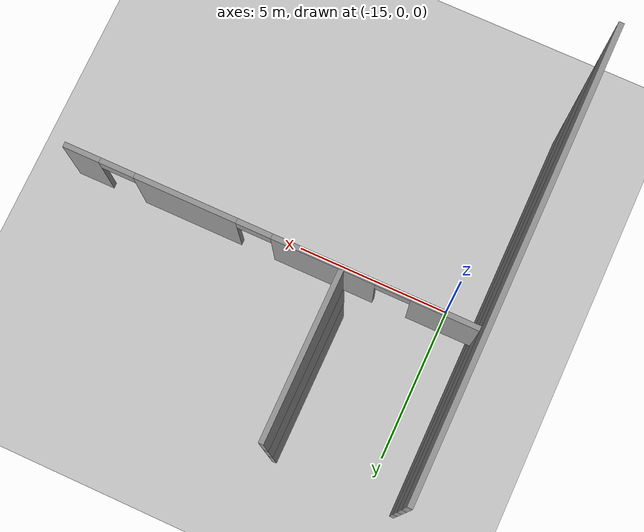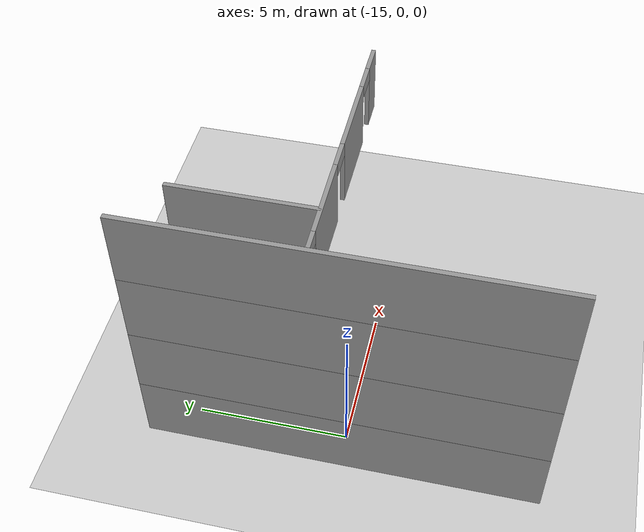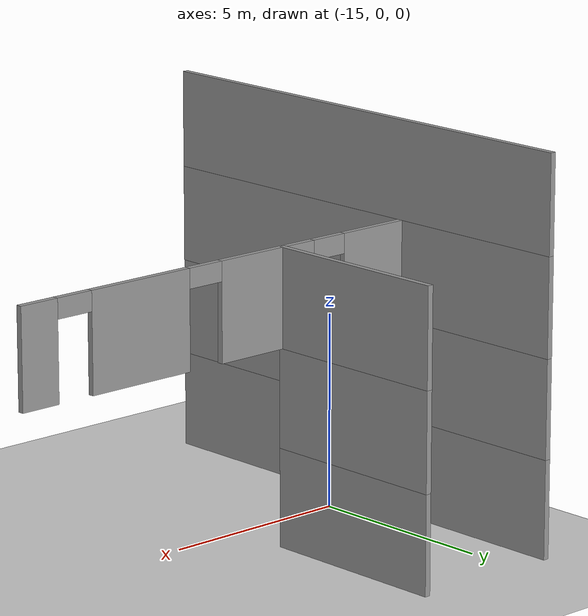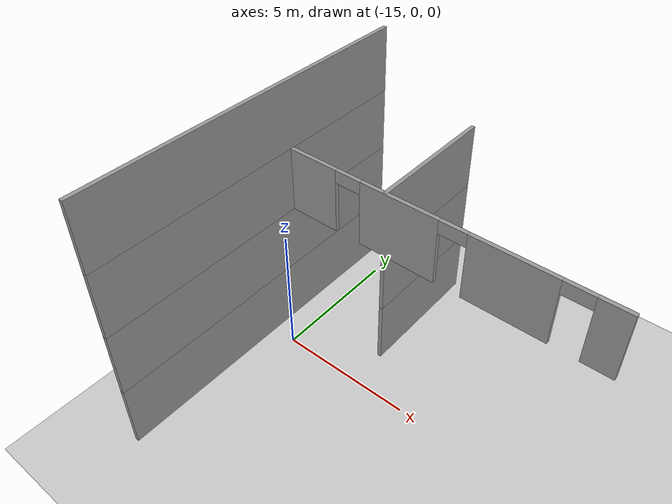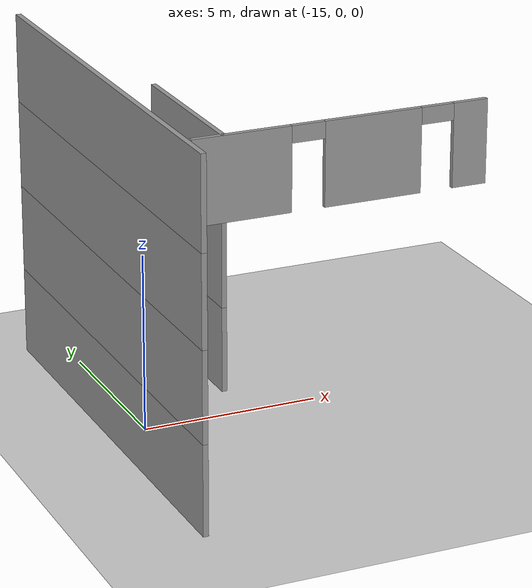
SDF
<sdf version="1.6">
 <world name="default">
  <model name="ground_plane">
   <static>1</static>
   <link name="link">
    <collision name="collision">
     <geometry><plane><normal>0 0 1</normal><size>100 100</size></plane></geometry>
     <surface>
      <contact><collide_bitmask>65535</collide_bitmask></contact>
      <friction><ode><mu>100</mu><mu2>50</mu2></ode></friction>
     </surface>
    </collision>
    <visual name="visual">
     <cast_shadows>0</cast_shadows>
     <geometry><plane><normal>0 0 1</normal><size>100 100</size></plane></geometry>
     <material>
      <script><uri>file://media/materials/scripts/gazebo.material</uri><name>Gazebo/Grey</name></script>
     </material>
    </visual>
   </link>
  </model>
  <model name="floor2plan_v2">
   <link name="Wall_102">
    <pose>-9.9294 1.47672 5 0 -0 0</pose>
    <visual name="Wall_102_Visual_0">
     <pose>-4.985 0 1.25 0 -0 0</pose>
     <geometry><box><size>1.987 0.15 2.5</size></box></geometry>
     <material>
      <script><uri>file://media/materials/scripts/gazebo.material</uri><name>Gazebo/Grey</name></script>
      <ambient>1 1 1 1</ambient>
      <shader type="pixel"/>
      <diffuse>0.7 0.7 0.7 1</diffuse>
      <specular>0.01 0.01 0.01 1</specular>
      <emissive>0 0 0 1</emissive>
     </material>
     <meta><layer>2</layer></meta>
    </visual>
    <visual name="Wall_102_Visual_1">
     <pose>-1.5135 0 1.25 0 -0 0</pose>
     <geometry><box><size>2.956 0.15 2.5</size></box></geometry>
     <material>
      <script><uri>file://media/materials/scripts/gazebo.material</uri><name>Gazebo/Grey</name></script>
      <ambient>1 1 1 1</ambient>
      <shader type="pixel"/>
      <diffuse>0.7 0.7 0.7 1</diffuse>
      <specular>0.01 0.01 0.01 1</specular>
      <emissive>0 0 0 1</emissive>
     </material>
     <meta><layer>2</layer></meta>
    </visual>
    <visual name="Wall_102_Visual_2">
     <pose>2.4425 0 1.25 0 -0 0</pose>
     <geometry><box><size>2.956 0.15 2.5</size></box></geometry>
     <material>
      <script><uri>file://media/materials/scripts/gazebo.material</uri><name>Gazebo/Grey</name></script>
      <ambient>1 1 1 1</ambient>
      <shader type="pixel"/>
      <diffuse>0.7 0.7 0.7 1</diffuse>
      <specular>0.01 0.01 0.01 1</specular>
      <emissive>0 0 0 1</emissive>
     </material>
     <meta><layer>2</layer></meta>
    </visual>
    <visual name="Wall_102_Visual_3">
     <pose>5.4495 0 1.25 0 -0 0</pose>
     <geometry><box><size>1.058 0.15 2.5</size></box></geometry>
     <material>
      <script><uri>file://media/materials/scripts/gazebo.material</uri><name>Gazebo/Grey</name></script>
      <ambient>1 1 1 1</ambient>
      <shader type="pixel"/>
      <diffuse>0.7 0.7 0.7 1</diffuse>
      <specular>0.01 0.01 0.01 1</specular>
      <emissive>0 0 0 1</emissive>
     </material>
     <meta><layer>2</layer></meta>
    </visual>
    <visual name="Wall_102_Visual_4">
     <pose>-3.4915 0 2.25 0 -0 0</pose>
     <geometry><box><size>1 0.15 0.5</size></box></geometry>
     <material>
      <script><uri>file://media/materials/scripts/gazebo.material</uri><name>Gazebo/Grey</name></script>
      <ambient>1 1 1 1</ambient>
      <shader type="pixel"/>
      <diffuse>0.7 0.7 0.7 1</diffuse>
      <specular>0.01 0.01 0.01 1</specular>
      <emissive>0 0 0 1</emissive>
     </material>
     <meta><layer>2</layer></meta>
    </visual>
    <visual name="Wall_102_Visual_5">
     <pose>0.4645 0 2.25 0 -0 0</pose>
     <geometry><box><size>1 0.15 0.5</size></box></geometry>
     <material>
      <script><uri>file://media/materials/scripts/gazebo.material</uri><name>Gazebo/Grey</name></script>
      <ambient>1 1 1 1</ambient>
      <shader type="pixel"/>
      <diffuse>0.7 0.7 0.7 1</diffuse>
      <specular>0.01 0.01 0.01 1</specular>
      <emissive>0 0 0 1</emissive>
     </material>
     <meta><layer>2</layer></meta>
    </visual>
    <visual name="Wall_102_Visual_6">
     <pose>4.4205 0 2.25 0 -0 0</pose>
     <geometry><box><size>1 0.15 0.5</size></box></geometry>
     <material>
      <script><uri>file://media/materials/scripts/gazebo.material</uri><name>Gazebo/Grey</name></script>
      <ambient>1 1 1 1</ambient>
      <shader type="pixel"/>
      <diffuse>0.7 0.7 0.7 1</diffuse>
      <specular>0.01 0.01 0.01 1</specular>
      <emissive>0 0 0 1</emissive>
     </material>
     <meta><layer>2</layer></meta>
    </visual>
    <collision name="Wall_102_Collision_0">
     <pose>-4.985 0 1.25 0 -0 0</pose>
     <geometry><box><size>1.987 0.15 2.5</size></box></geometry>
     <surface>
      <friction>
       <ode><mu>1</mu><mu2>1</mu2><fdir1>0 0 0</fdir1><slip1>0</slip1><slip2>0</slip2></ode>
       <torsional>
        <coefficient>1</coefficient>
        <patch_radius>0</patch_radius>
        <surface_radius>0</surface_radius>
        <use_patch_radius>1</use_patch_radius>
        <ode><slip>0</slip></ode>
       </torsional>
      </friction>
      <bounce><restitution_coefficient>0</restitution_coefficient><threshold>1e+06</threshold></bounce>
      <contact>
       <collide_without_contact>0</collide_without_contact>
       <collide_without_contact_bitmask>1</collide_without_contact_bitmask>
       <collide_bitmask>1</collide_bitmask>
       <ode>
        <soft_cfm>0</soft_cfm>
        <soft_erp>0.2</soft_erp>
        <kp>1e+13</kp>
        <kd>1</kd>
        <max_vel>0.01</max_vel>
        <min_depth>0</min_depth>
       </ode>
       <bullet>
        <split_impulse>1</split_impulse>
        <split_impulse_penetration_threshold>-0.01</split_impulse_penetration_threshold>
        <soft_cfm>0</soft_cfm>
        <soft_erp>0.2</soft_erp>
        <kp>1e+13</kp>
        <kd>1</kd>
       </bullet>
      </contact>
     </surface>
    </collision>
    <collision name="Wall_102_Collision_2">
     <pose>2.4425 0 1.25 0 -0 0</pose>
     <geometry><box><size>2.956 0.15 2.5</size></box></geometry>
     <surface>
      <friction>
       <ode><mu>1</mu><mu2>1</mu2><fdir1>0 0 0</fdir1><slip1>0</slip1><slip2>0</slip2></ode>
       <torsional>
        <coefficient>1</coefficient>
        <patch_radius>0</patch_radius>
        <surface_radius>0</surface_radius>
        <use_patch_radius>1</use_patch_radius>
        <ode><slip>0</slip></ode>
       </torsional>
      </friction>
      <bounce><restitution_coefficient>0</restitution_coefficient><threshold>1e+06</threshold></bounce>
      <contact>
       <collide_without_contact>0</collide_without_contact>
       <collide_without_contact_bitmask>1</collide_without_contact_bitmask>
       <collide_bitmask>1</collide_bitmask>
       <ode>
        <soft_cfm>0</soft_cfm>
        <soft_erp>0.2</soft_erp>
        <kp>1e+13</kp>
        <kd>1</kd>
        <max_vel>0.01</max_vel>
        <min_depth>0</min_depth>
       </ode>
       <bullet>
        <split_impulse>1</split_impulse>
        <split_impulse_penetration_threshold>-0.01</split_impulse_penetration_threshold>
        <soft_cfm>0</soft_cfm>
        <soft_erp>0.2</soft_erp>
        <kp>1e+13</kp>
        <kd>1</kd>
       </bullet>
      </contact>
     </surface>
    </collision>
    <collision name="Wall_102_Collision_1">
     <pose>-1.5135 0 1.25 0 -0 0</pose>
     <geometry><box><size>2.956 0.15 2.5</size></box></geometry>
     <surface>
      <friction>
       <ode><mu>1</mu><mu2>1</mu2><fdir1>0 0 0</fdir1><slip1>0</slip1><slip2>0</slip2></ode>
       <torsional>
        <coefficient>1</coefficient>
        <patch_radius>0</patch_radius>
        <surface_radius>0</surface_radius>
        <use_patch_radius>1</use_patch_radius>
        <ode><slip>0</slip></ode>
       </torsional>
      </friction>
      <bounce><restitution_coefficient>0</restitution_coefficient><threshold>1e+06</threshold></bounce>
      <contact>
       <collide_without_contact>0</collide_without_contact>
       <collide_without_contact_bitmask>1</collide_without_contact_bitmask>
       <collide_bitmask>1</collide_bitmask>
       <ode>
        <soft_cfm>0</soft_cfm>
        <soft_erp>0.2</soft_erp>
        <kp>1e+13</kp>
        <kd>1</kd>
        <max_vel>0.01</max_vel>
        <min_depth>0</min_depth>
       </ode>
       <bullet>
        <split_impulse>1</split_impulse>
        <split_impulse_penetration_threshold>-0.01</split_impulse_penetration_threshold>
        <soft_cfm>0</soft_cfm>
        <soft_erp>0.2</soft_erp>
        <kp>1e+13</kp>
        <kd>1</kd>
       </bullet>
      </contact>
     </surface>
    </collision>
    <collision name="Wall_102_Collision_3">
     <pose>5.4495 0 1.25 0 -0 0</pose>
     <geometry><box><size>1.058 0.15 2.5</size></box></geometry>
     <surface>
      <friction>
       <ode><mu>1</mu><mu2>1</mu2><fdir1>0 0 0</fdir1><slip1>0</slip1><slip2>0</slip2></ode>
       <torsional>
        <coefficient>1</coefficient>
        <patch_radius>0</patch_radius>
        <surface_radius>0</surface_radius>
        <use_patch_radius>1</use_patch_radius>
        <ode><slip>0</slip></ode>
       </torsional>
      </friction>
      <bounce><restitution_coefficient>0</restitution_coefficient><threshold>1e+06</threshold></bounce>
      <contact>
       <collide_without_contact>0</collide_without_contact>
       <collide_without_contact_bitmask>1</collide_without_contact_bitmask>
       <collide_bitmask>1</collide_bitmask>
       <ode>
        <soft_cfm>0</soft_cfm>
        <soft_erp>0.2</soft_erp>
        <kp>1e+13</kp>
        <kd>1</kd>
        <max_vel>0.01</max_vel>
        <min_depth>0</min_depth>
       </ode>
       <bullet>
        <split_impulse>1</split_impulse>
        <split_impulse_penetration_threshold>-0.01</split_impulse_penetration_threshold>
        <soft_cfm>0</soft_cfm>
        <soft_erp>0.2</soft_erp>
        <kp>1e+13</kp>
        <kd>1</kd>
       </bullet>
      </contact>
     </surface>
    </collision>
    <collision name="Wall_102_Collision_4">
     <pose>-3.4915 0 2.25 0 -0 0</pose>
     <geometry><box><size>1 0.15 0.5</size></box></geometry>
     <surface>
      <friction>
       <ode><mu>1</mu><mu2>1</mu2><fdir1>0 0 0</fdir1><slip1>0</slip1><slip2>0</slip2></ode>
       <torsional>
        <coefficient>1</coefficient>
        <patch_radius>0</patch_radius>
        <surface_radius>0</surface_radius>
        <use_patch_radius>1</use_patch_radius>
        <ode><slip>0</slip></ode>
       </torsional>
      </friction>
      <bounce><restitution_coefficient>0</restitution_coefficient><threshold>1e+06</threshold></bounce>
      <contact>
       <collide_without_contact>0</collide_without_contact>
       <collide_without_contact_bitmask>1</collide_without_contact_bitmask>
       <collide_bitmask>1</collide_bitmask>
       <ode>
        <soft_cfm>0</soft_cfm>
        <soft_erp>0.2</soft_erp>
        <kp>1e+13</kp>
        <kd>1</kd>
        <max_vel>0.01</max_vel>
        <min_depth>0</min_depth>
       </ode>
       <bullet>
        <split_impulse>1</split_impulse>
        <split_impulse_penetration_threshold>-0.01</split_impulse_penetration_threshold>
        <soft_cfm>0</soft_cfm>
        <soft_erp>0.2</soft_erp>
        <kp>1e+13</kp>
        <kd>1</kd>
       </bullet>
      </contact>
     </surface>
    </collision>
    <collision name="Wall_102_Collision_5">
     <pose>0.4645 0 2.25 0 -0 0</pose>
     <geometry><box><size>1 0.15 0.5</size></box></geometry>
     <surface>
      <friction>
       <ode><mu>1</mu><mu2>1</mu2><fdir1>0 0 0</fdir1><slip1>0</slip1><slip2>0</slip2></ode>
       <torsional>
        <coefficient>1</coefficient>
        <patch_radius>0</patch_radius>
        <surface_radius>0</surface_radius>
        <use_patch_radius>1</use_patch_radius>
        <ode><slip>0</slip></ode>
       </torsional>
      </friction>
      <bounce><restitution_coefficient>0</restitution_coefficient><threshold>1e+06</threshold></bounce>
      <contact>
       <collide_without_contact>0</collide_without_contact>
       <collide_without_contact_bitmask>1</collide_without_contact_bitmask>
       <collide_bitmask>1</collide_bitmask>
       <ode>
        <soft_cfm>0</soft_cfm>
        <soft_erp>0.2</soft_erp>
        <kp>1e+13</kp>
        <kd>1</kd>
        <max_vel>0.01</max_vel>
        <min_depth>0</min_depth>
       </ode>
       <bullet>
        <split_impulse>1</split_impulse>
        <split_impulse_penetration_threshold>-0.01</split_impulse_penetration_threshold>
        <soft_cfm>0</soft_cfm>
        <soft_erp>0.2</soft_erp>
        <kp>1e+13</kp>
        <kd>1</kd>
       </bullet>
      </contact>
     </surface>
    </collision>
    <collision name="Wall_102_Collision_6">
     <pose>4.4205 0 2.25 0 -0 0</pose>
     <geometry><box><size>1 0.15 0.5</size></box></geometry>
     <surface>
      <friction>
       <ode><mu>1</mu><mu2>1</mu2><fdir1>0 0 0</fdir1><slip1>0</slip1><slip2>0</slip2></ode>
       <torsional>
        <coefficient>1</coefficient>
        <patch_radius>0</patch_radius>
        <surface_radius>0</surface_radius>
        <use_patch_radius>1</use_patch_radius>
        <ode><slip>0</slip></ode>
       </torsional>
      </friction>
      <bounce><restitution_coefficient>0</restitution_coefficient><threshold>1e+06</threshold></bounce>
      <contact>
       <collide_without_contact>0</collide_without_contact>
       <collide_without_contact_bitmask>1</collide_without_contact_bitmask>
       <collide_bitmask>1</collide_bitmask>
       <ode>
        <soft_cfm>0</soft_cfm>
        <soft_erp>0.2</soft_erp>
        <kp>1e+13</kp>
        <kd>1</kd>
        <max_vel>0.01</max_vel>
        <min_depth>0</min_depth>
       </ode>
       <bullet>
        <split_impulse>1</split_impulse>
        <split_impulse_penetration_threshold>-0.01</split_impulse_penetration_threshold>
        <soft_cfm>0</soft_cfm>
        <soft_erp>0.2</soft_erp>
        <kp>1e+13</kp>
        <kd>1</kd>
       </bullet>
      </contact>
     </surface>
    </collision>
   </link>
   <link name="Wall_103">
    <pose>-11.9689 3.95072 5 0 0 -1.5708</pose>
    <visual name="Wall_103_Visual">
     <pose>0 0 1.25 0 -0 0</pose>
     <geometry><box><size>5 0.15 2.5</size></box></geometry>
     <material>
      <script><uri>file://media/materials/scripts/gazebo.material</uri><name>Gazebo/Grey</name></script>
      <ambient>1 1 1 1</ambient>
      <shader type="pixel"/>
      <diffuse>0.7 0.7 0.7 1</diffuse>
      <specular>0.01 0.01 0.01 1</specular>
      <emissive>0 0 0 1</emissive>
     </material>
     <meta><layer>2</layer></meta>
    </visual>
    <collision name="Wall_103_Collision">
     <pose>0 0 1.25 0 -0 0</pose>
     <geometry><box><size>5 0.15 2.5</size></box></geometry>
     <surface>
      <friction>
       <ode><mu>1</mu><mu2>1</mu2><fdir1>0 0 0</fdir1><slip1>0</slip1><slip2>0</slip2></ode>
       <torsional>
        <coefficient>1</coefficient>
        <patch_radius>0</patch_radius>
        <surface_radius>0</surface_radius>
        <use_patch_radius>1</use_patch_radius>
        <ode><slip>0</slip></ode>
       </torsional>
      </friction>
      <bounce><restitution_coefficient>0</restitution_coefficient><threshold>1e+06</threshold></bounce>
      <contact>
       <collide_without_contact>0</collide_without_contact>
       <collide_without_contact_bitmask>1</collide_without_contact_bitmask>
       <collide_bitmask>1</collide_bitmask>
       <ode>
        <soft_cfm>0</soft_cfm>
        <soft_erp>0.2</soft_erp>
        <kp>1e+13</kp>
        <kd>1</kd>
        <max_vel>0.01</max_vel>
        <min_depth>0</min_depth>
       </ode>
       <bullet>
        <split_impulse>1</split_impulse>
        <split_impulse_penetration_threshold>-0.01</split_impulse_penetration_threshold>
        <soft_cfm>0</soft_cfm>
        <soft_erp>0.2</soft_erp>
        <kp>1e+13</kp>
        <kd>1</kd>
       </bullet>
      </contact>
     </surface>
    </collision>
   </link>
   <link name="Wall_125">
    <pose>-15.925 -0.0115 7.5 0 0 -1.5708</pose>
    <visual name="Wall_125_Visual">
     <pose>0 0 1.25 0 -0 0</pose>
     <geometry><box><size>13 0.15 2.5</size></box></geometry>
     <material>
      <script><uri>file://media/materials/scripts/gazebo.material</uri><name>Gazebo/Grey</name></script>
      <ambient>1 1 1 1</ambient>
      <shader type="pixel"/>
      <diffuse>0.7 0.7 0.7 1</diffuse>
      <specular>0.01 0.01 0.01 1</specular>
      <emissive>0 0 0 1</emissive>
     </material>
     <meta><layer>3</layer></meta>
    </visual>
    <collision name="Wall_125_Collision">
     <pose>0 0 1.25 0 -0 0</pose>
     <geometry><box><size>13 0.15 2.5</size></box></geometry>
     <surface>
      <friction>
       <ode><mu>1</mu><mu2>1</mu2><fdir1>0 0 0</fdir1><slip1>0</slip1><slip2>0</slip2></ode>
       <torsional>
        <coefficient>1</coefficient>
        <patch_radius>0</patch_radius>
        <surface_radius>0</surface_radius>
        <use_patch_radius>1</use_patch_radius>
        <ode><slip>0</slip></ode>
       </torsional>
      </friction>
      <bounce><restitution_coefficient>0</restitution_coefficient><threshold>1e+06</threshold></bounce>
      <contact>
       <collide_without_contact>0</collide_without_contact>
       <collide_without_contact_bitmask>1</collide_without_contact_bitmask>
       <collide_bitmask>1</collide_bitmask>
       <ode>
        <soft_cfm>0</soft_cfm>
        <soft_erp>0.2</soft_erp>
        <kp>1e+13</kp>
        <kd>1</kd>
        <max_vel>0.01</max_vel>
        <min_depth>0</min_depth>
       </ode>
       <bullet>
        <split_impulse>1</split_impulse>
        <split_impulse_penetration_threshold>-0.01</split_impulse_penetration_threshold>
        <soft_cfm>0</soft_cfm>
        <soft_erp>0.2</soft_erp>
        <kp>1e+13</kp>
        <kd>1</kd>
       </bullet>
      </contact>
     </surface>
    </collision>
   </link>
   <link name="Wall_16">
    <pose>-11.9689 3.95072 0 0 0 -1.5708</pose>
    <visual name="Wall_16_Visual">
     <pose>0 0 1.25 0 -0 0</pose>
     <geometry><box><size>5 0.15 2.5</size></box></geometry>
     <material>
      <script><uri>file://media/materials/scripts/gazebo.material</uri><name>Gazebo/Grey</name></script>
      <ambient>1 1 1 1</ambient>
      <shader type="pixel"/>
      <diffuse>0.7 0.7 0.7 1</diffuse>
      <specular>0.01 0.01 0.01 1</specular>
      <emissive>0 0 0 1</emissive>
     </material>
     <meta><layer>0</layer></meta>
    </visual>
    <collision name="Wall_16_Collision">
     <pose>0 0 1.25 0 -0 0</pose>
     <geometry><box><size>5 0.15 2.5</size></box></geometry>
     <surface>
      <friction>
       <ode><mu>1</mu><mu2>1</mu2><fdir1>0 0 0</fdir1><slip1>0</slip1><slip2>0</slip2></ode>
       <torsional>
        <coefficient>1</coefficient>
        <patch_radius>0</patch_radius>
        <surface_radius>0</surface_radius>
        <use_patch_radius>1</use_patch_radius>
        <ode><slip>0</slip></ode>
       </torsional>
      </friction>
      <bounce><restitution_coefficient>0</restitution_coefficient><threshold>1e+06</threshold></bounce>
      <contact>
       <collide_without_contact>0</collide_without_contact>
       <collide_without_contact_bitmask>1</collide_without_contact_bitmask>
       <collide_bitmask>1</collide_bitmask>
       <ode>
        <soft_cfm>0</soft_cfm>
        <soft_erp>0.2</soft_erp>
        <kp>1e+13</kp>
        <kd>1</kd>
        <max_vel>0.01</max_vel>
        <min_depth>0</min_depth>
       </ode>
       <bullet>
        <split_impulse>1</split_impulse>
        <split_impulse_penetration_threshold>-0.01</split_impulse_penetration_threshold>
        <soft_cfm>0</soft_cfm>
        <soft_erp>0.2</soft_erp>
        <kp>1e+13</kp>
        <kd>1</kd>
       </bullet>
      </contact>
     </surface>
    </collision>
   </link>
   <link name="Wall_73">
    <pose>-15.925 -0.0115 2.5 0 0 -1.5708</pose>
    <visual name="Wall_73_Visual">
     <pose>0 0 1.25 0 -0 0</pose>
     <geometry><box><size>13 0.15 2.5</size></box></geometry>
     <material>
      <script><uri>file://media/materials/scripts/gazebo.material</uri><name>Gazebo/Grey</name></script>
      <ambient>1 1 1 1</ambient>
      <shader type="pixel"/>
      <diffuse>0.7 0.7 0.7 1</diffuse>
      <specular>0.01 0.01 0.01 1</specular>
      <emissive>0 0 0 1</emissive>
     </material>
     <meta><layer>1</layer></meta>
    </visual>
    <collision name="Wall_73_Collision">
     <pose>0 0 1.25 0 -0 0</pose>
     <geometry><box><size>13 0.15 2.5</size></box></geometry>
     <surface>
      <friction>
       <ode><mu>1</mu><mu2>1</mu2><fdir1>0 0 0</fdir1><slip1>0</slip1><slip2>0</slip2></ode>
       <torsional>
        <coefficient>1</coefficient>
        <patch_radius>0</patch_radius>
        <surface_radius>0</surface_radius>
        <use_patch_radius>1</use_patch_radius>
        <ode><slip>0</slip></ode>
       </torsional>
      </friction>
      <bounce><restitution_coefficient>0</restitution_coefficient><threshold>1e+06</threshold></bounce>
      <contact>
       <collide_without_contact>0</collide_without_contact>
       <collide_without_contact_bitmask>1</collide_without_contact_bitmask>
       <collide_bitmask>1</collide_bitmask>
       <ode>
        <soft_cfm>0</soft_cfm>
        <soft_erp>0.2</soft_erp>
        <kp>1e+13</kp>
        <kd>1</kd>
        <max_vel>0.01</max_vel>
        <min_depth>0</min_depth>
       </ode>
       <bullet>
        <split_impulse>1</split_impulse>
        <split_impulse_penetration_threshold>-0.01</split_impulse_penetration_threshold>
        <soft_cfm>0</soft_cfm>
        <soft_erp>0.2</soft_erp>
        <kp>1e+13</kp>
        <kd>1</kd>
       </bullet>
      </contact>
     </surface>
    </collision>
   </link>
   <link name="Wall_77">
    <pose>-11.9689 3.95072 2.5 0 0 -1.5708</pose>
    <visual name="Wall_77_Visual">
     <pose>0 0 1.25 0 -0 0</pose>
     <geometry><box><size>5 0.15 2.5</size></box></geometry>
     <material>
      <script><uri>file://media/materials/scripts/gazebo.material</uri><name>Gazebo/Grey</name></script>
      <ambient>1 1 1 1</ambient>
      <shader type="pixel"/>
      <diffuse>0.7 0.7 0.7 1</diffuse>
      <specular>0.01 0.01 0.01 1</specular>
      <emissive>0 0 0 1</emissive>
     </material>
     <meta><layer>1</layer></meta>
    </visual>
    <collision name="Wall_77_Collision">
     <pose>0 0 1.25 0 -0 0</pose>
     <geometry><box><size>5 0.15 2.5</size></box></geometry>
     <surface>
      <friction>
       <ode><mu>1</mu><mu2>1</mu2><fdir1>0 0 0</fdir1><slip1>0</slip1><slip2>0</slip2></ode>
       <torsional>
        <coefficient>1</coefficient>
        <patch_radius>0</patch_radius>
        <surface_radius>0</surface_radius>
        <use_patch_radius>1</use_patch_radius>
        <ode><slip>0</slip></ode>
       </torsional>
      </friction>
      <bounce><restitution_coefficient>0</restitution_coefficient><threshold>1e+06</threshold></bounce>
      <contact>
       <collide_without_contact>0</collide_without_contact>
       <collide_without_contact_bitmask>1</collide_without_contact_bitmask>
       <collide_bitmask>1</collide_bitmask>
       <ode>
        <soft_cfm>0</soft_cfm>
        <soft_erp>0.2</soft_erp>
        <kp>1e+13</kp>
        <kd>1</kd>
        <max_vel>0.01</max_vel>
        <min_depth>0</min_depth>
       </ode>
       <bullet>
        <split_impulse>1</split_impulse>
        <split_impulse_penetration_threshold>-0.01</split_impulse_penetration_threshold>
        <soft_cfm>0</soft_cfm>
        <soft_erp>0.2</soft_erp>
        <kp>1e+13</kp>
        <kd>1</kd>
       </bullet>
      </contact>
     </surface>
    </collision>
   </link>
   <link name="Wall_8">
    <pose>-15.925 -0.0115 0 0 0 -1.5708</pose>
    <visual name="Wall_8_Visual">
     <pose>0 0 1.25 0 -0 0</pose>
     <geometry><box><size>13 0.15 2.5</size></box></geometry>
     <material>
      <script><uri>file://media/materials/scripts/gazebo.material</uri><name>Gazebo/Grey</name></script>
      <ambient>1 1 1 1</ambient>
      <shader type="pixel"/>
      <diffuse>0.7 0.7 0.7 1</diffuse>
      <specular>0.01 0.01 0.01 1</specular>
      <emissive>0 0 0 1</emissive>
     </material>
     <meta><layer>0</layer></meta>
    </visual>
    <collision name="Wall_8_Collision">
     <pose>0 0 1.25 0 -0 0</pose>
     <geometry><box><size>13 0.15 2.5</size></box></geometry>
     <surface>
      <friction>
       <ode><mu>1</mu><mu2>1</mu2><fdir1>0 0 0</fdir1><slip1>0</slip1><slip2>0</slip2></ode>
       <torsional>
        <coefficient>1</coefficient>
        <patch_radius>0</patch_radius>
        <surface_radius>0</surface_radius>
        <use_patch_radius>1</use_patch_radius>
        <ode><slip>0</slip></ode>
       </torsional>
      </friction>
      <bounce><restitution_coefficient>0</restitution_coefficient><threshold>1e+06</threshold></bounce>
      <contact>
       <collide_without_contact>0</collide_without_contact>
       <collide_without_contact_bitmask>1</collide_without_contact_bitmask>
       <collide_bitmask>1</collide_bitmask>
       <ode>
        <soft_cfm>0</soft_cfm>
        <soft_erp>0.2</soft_erp>
        <kp>1e+13</kp>
        <kd>1</kd>
        <max_vel>0.01</max_vel>
        <min_depth>0</min_depth>
       </ode>
       <bullet>
        <split_impulse>1</split_impulse>
        <split_impulse_penetration_threshold>-0.01</split_impulse_penetration_threshold>
        <soft_cfm>0</soft_cfm>
        <soft_erp>0.2</soft_erp>
        <kp>1e+13</kp>
        <kd>1</kd>
       </bullet>
      </contact>
     </surface>
    </collision>
   </link>
   <link name="Wall_99">
    <pose>-15.925 -0.0115 5 0 0 -1.5708</pose>
    <visual name="Wall_99_Visual">
     <pose>0 0 1.25 0 -0 0</pose>
     <geometry><box><size>13 0.15 2.5</size></box></geometry>
     <material>
      <script><uri>file://media/materials/scripts/gazebo.material</uri><name>Gazebo/Grey</name></script>
      <ambient>1 1 1 1</ambient>
      <shader type="pixel"/>
      <diffuse>0.7 0.7 0.7 1</diffuse>
      <specular>0.01 0.01 0.01 1</specular>
      <emissive>0 0 0 1</emissive>
     </material>
     <meta><layer>2</layer></meta>
    </visual>
    <collision name="Wall_99_Collision">
     <pose>0 0 1.25 0 -0 0</pose>
     <geometry><box><size>13 0.15 2.5</size></box></geometry>
     <surface>
      <friction>
       <ode><mu>1</mu><mu2>1</mu2><fdir1>0 0 0</fdir1><slip1>0</slip1><slip2>0</slip2></ode>
       <torsional>
        <coefficient>1</coefficient>
        <patch_radius>0</patch_radius>
        <surface_radius>0</surface_radius>
        <use_patch_radius>1</use_patch_radius>
        <ode><slip>0</slip></ode>
       </torsional>
      </friction>
      <bounce><restitution_coefficient>0</restitution_coefficient><threshold>1e+06</threshold></bounce>
      <contact>
       <collide_without_contact>0</collide_without_contact>
       <collide_without_contact_bitmask>1</collide_without_contact_bitmask>
       <collide_bitmask>1</collide_bitmask>
       <ode>
        <soft_cfm>0</soft_cfm>
        <soft_erp>0.2</soft_erp>
        <kp>1e+13</kp>
        <kd>1</kd>
        <max_vel>0.01</max_vel>
        <min_depth>0</min_depth>
       </ode>
       <bullet>
        <split_impulse>1</split_impulse>
        <split_impulse_penetration_threshold>-0.01</split_impulse_penetration_threshold>
        <soft_cfm>0</soft_cfm>
        <soft_erp>0.2</soft_erp>
        <kp>1e+13</kp>
        <kd>1</kd>
       </bullet>
      </contact>
     </surface>
    </collision>
   </link>
   <static>1</static>
   <pose>-0.074109 0.009792 0 0 -0 0</pose>
  </model>
 </world>
</sdf>
